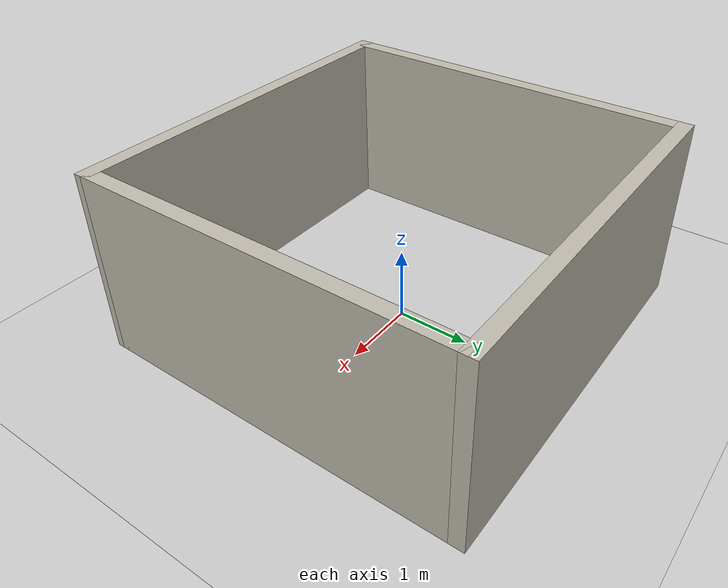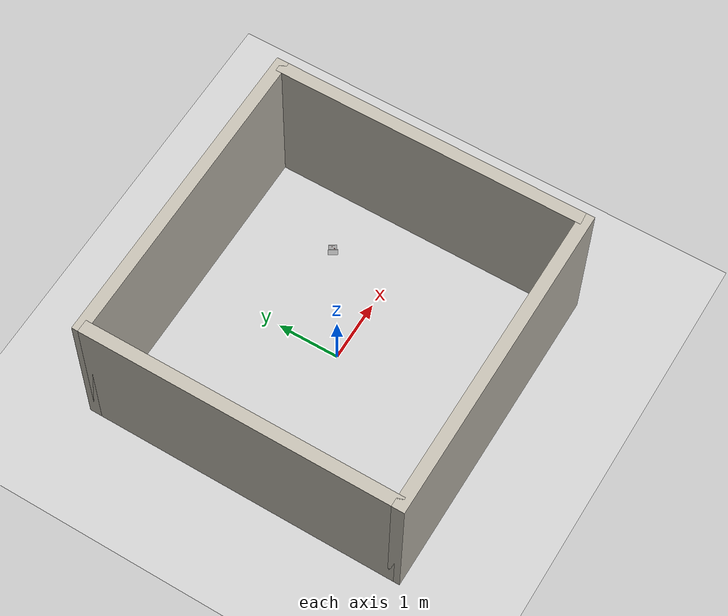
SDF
<sdf version="1.8">
 <world name="default">
  <physics name="1ms" type="bullet-featherstone">
   <max_step_size>0.001</max_step_size>
   <real_time_factor>1.0</real_time_factor>
  </physics>
  <plugin filename="gz-sim-physics-system" name="gz::sim::systems::Physics"/>
  <plugin filename="gz-sim-sensors-system" name="gz::sim::systems::Sensors">
   <render_engine>ogre2</render_engine>
  </plugin>
  <plugin filename="gz-sim-user-commands-system" name="gz::sim::systems::UserCommands"/>
  <plugin filename="gz-sim-scene-broadcaster-system" name="gz::sim::systems::SceneBroadcaster"/>
  <light type="directional" name="sun">
   <cast_shadows>false</cast_shadows>
   <pose>0 0 10 0 0 0</pose>
   <diffuse>0.8 0.8 0.8 1</diffuse>
   <specular>0.2 0.2 0.2 1</specular>
   <attenuation>
    <range>1000</range>
    <constant>0.9</constant>
    <linear>0.01</linear>
    <quadratic>0.001</quadratic>
   </attenuation>
   <direction>-0.5 0.1 -0.9</direction>
  </light>
  <model name="ground_plane">
   <static>true</static>
   <link name="link">
    <collision name="collision">
     <geometry><plane><normal>0 0 1</normal><size>20 20</size></plane></geometry>
    </collision>
    <visual name="visual">
     <geometry><plane><normal>0 0 1</normal><size>20 20</size></plane></geometry>
     <material>
      <ambient>0.8 0.8 0.8 1</ambient>
      <diffuse>0.8 0.8 0.8 1</diffuse>
      <specular>0.8 0.8 0.8 1</specular>
     </material>
    </visual>
   </link>
  </model>
  <model name="wall_north">
   <static>true</static>
   <pose>0 2.5 1.25 0 0 0</pose>
   <link name="link">
    <collision name="collision"><geometry><box><size>5.2 0.2 2.5</size></box></geometry></collision>
    <visual name="visual">
     <geometry><box><size>5.2 0.2 2.5</size></box></geometry>
     <material>
      <ambient>0.75 0.73 0.68 1</ambient>
      <diffuse>0.75 0.73 0.68 1</diffuse>
      <specular>0.3 0.3 0.3 1</specular>
     </material>
    </visual>
   </link>
  </model>
  <model name="wall_south">
   <static>true</static>
   <pose>0 -2.5 1.25 0 0 0</pose>
   <link name="link">
    <collision name="collision"><geometry><box><size>5.2 0.2 2.5</size></box></geometry></collision>
    <visual name="visual">
     <geometry><box><size>5.2 0.2 2.5</size></box></geometry>
     <material>
      <ambient>0.75 0.73 0.68 1</ambient>
      <diffuse>0.75 0.73 0.68 1</diffuse>
      <specular>0.3 0.3 0.3 1</specular>
     </material>
    </visual>
   </link>
  </model>
  <model name="wall_east">
   <static>true</static>
   <pose>2.5 0 1.25 0 0 0</pose>
   <link name="link">
    <collision name="collision"><geometry><box><size>0.2 5 2.5</size></box></geometry></collision>
    <visual name="visual">
     <geometry><box><size>0.2 5 2.5</size></box></geometry>
     <material>
      <ambient>0.75 0.73 0.68 1</ambient>
      <diffuse>0.75 0.73 0.68 1</diffuse>
      <specular>0.3 0.3 0.3 1</specular>
     </material>
    </visual>
   </link>
  </model>
  <model name="wall_west">
   <static>true</static>
   <pose>-2.5 0 1.25 0 0 0</pose>
   <link name="link">
    <collision name="collision"><geometry><box><size>0.2 5 2.5</size></box></geometry></collision>
    <visual name="visual">
     <geometry><box><size>0.2 5 2.5</size></box></geometry>
     <material>
      <ambient>0.75 0.73 0.68 1</ambient>
      <diffuse>0.75 0.73 0.68 1</diffuse>
      <specular>0.3 0.3 0.3 1</specular>
     </material>
    </visual>
   </link>
  </model>
  <model name="aruco_marker_0">
   <static>true</static>
   <pose>1.334 0.889 0.3 0 0 -2.5536</pose>
   <link name="link">
    <visual name="visual">
     <geometry><box><size>0.005 0.15 0.15</size></box></geometry>
     <material>
      <ambient>1 1 1 1</ambient>
      <diffuse>1 1 1 1</diffuse>
      <specular>0.1 0.1 0.1 1</specular>
      <pbr>
       <metal>
        <albedo_map>textures/marker_0.png</albedo_map>
        <metalness>0.0</metalness>
        <roughness>1.0</roughness>
       </metal>
      </pbr>
     </material>
    </visual>
   </link>
  </model>
  <model name="gauge_dial_0">
   <static>true</static>
   <pose>1.334 0.889 0.45 0 0 -2.5536</pose>
   <link name="link">
    <visual name="visual">
     <geometry><box><size>0.005 0.12 0.12</size></box></geometry>
     <material>
      <ambient>1 1 1 1</ambient>
      <diffuse>1 1 1 1</diffuse>
      <specular>0.1 0.1 0.1 1</specular>
      <pbr>
       <metal>
        <albedo_map>textures/gauge_dial.png</albedo_map>
        <metalness>0.0</metalness>
        <roughness>1.0</roughness>
       </metal>
      </pbr>
     </material>
    </visual>
   </link>
  </model>
  <model name="gauge_needle_0">
   <static>true</static>
   <pose>1.334 0.889 0.45 -1.0472 0.0 -2.5536</pose>
   <link name="link">
    <visual name="pointer">
     <pose>0 0.045 0 0 0 0</pose>
     <geometry><box><size>0.008 0.05 0.006</size></box></geometry>
     <material>
      <ambient>0.85 0.05 0.05 1</ambient>
      <diffuse>0.85 0.05 0.05 1</diffuse>
      <specular>0.9 0.9 0.9 1</specular>
     </material>
    </visual>
    <visual name="tail">
     <pose>0 -0.0125 0 0 0 0</pose>
     <geometry><box><size>0.008 0.015 0.006</size></box></geometry>
     <material>
      <ambient>0.85 0.05 0.05 1</ambient>
      <diffuse>0.85 0.05 0.05 1</diffuse>
      <specular>0.9 0.9 0.9 1</specular>
     </material>
    </visual>
   </link>
  </model>
 </world>
</sdf>
